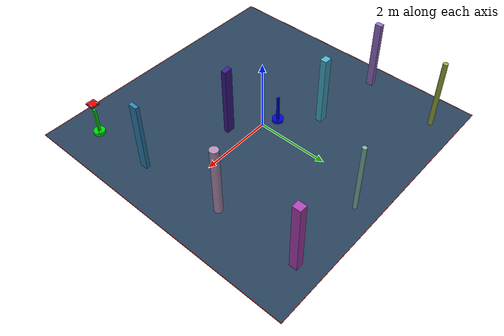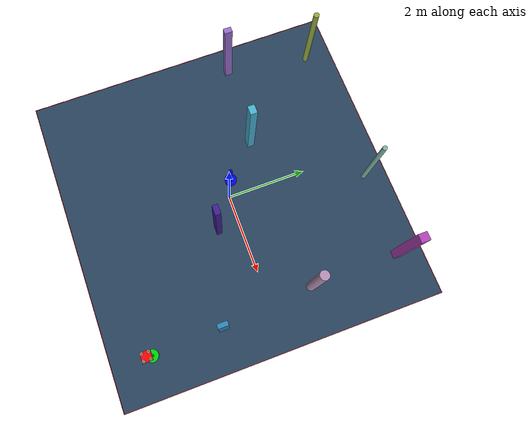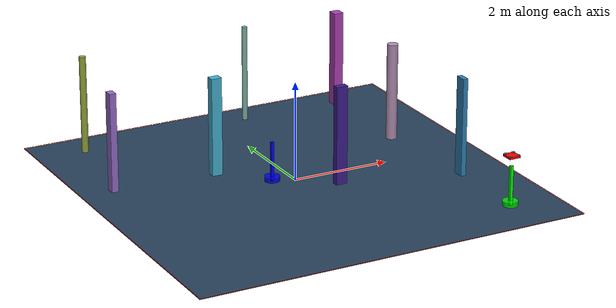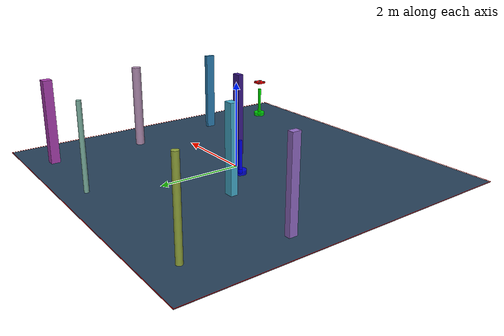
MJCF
<?xml version='1.0' encoding='utf-8'?>
<mujoco model="complex_uav_env">
  <compiler angle="degree" coordinate="local" inertiafromgeom="true" />
  <option integrator="RK4" timestep="0.01" />

  <visual>
    <headlight diffuse="0.6 0.6 0.6" ambient="0.3 0.3 0.3" />
    <rgba haze="0.15 0.25 0.35 1" />
    <global offwidth="2560" offheight="1440" />
  </visual>

  <asset>
    <texture type="skybox" builtin="gradient" rgb1="0.3 0.5 0.7" rgb2="0 0 0" width="512" height="3072" />
    <texture name="grid" type="2d" builtin="checker" rgb1="0.1 0.2 0.3" rgb2="0.2 0.3 0.4" width="512" height="512" />
    <material name="grid" texture="grid" texrepeat="1 1" />
  </asset>

  <worldbody>

    <geom name="ground" type="plane" size="4.0 4.0 0.1" material="grid" />
    <light name="light1" pos="0 0 4" dir="0 0 -1" diffuse="1 1 1" />

    <geom name="start_marker" type="cylinder" size="0.15 0.05" pos="3.0 -3.0 0.05" rgba="0 1 0 0.8" />
    <geom name="start_pole" type="box" size="0.03 0.03 0.4" pos="3.0 -3.0 0.4" rgba="0 1 0 1" />

    <geom name="goal_marker" type="cylinder" size="0.15 0.05" pos="-0.40393377485241455 0.18988515151932672 0.05" rgba="0 0 1 0.8" />
    <geom name="goal_pole" type="box" size="0.03 0.03 0.4" pos="-0.40393377485241455 0.18988515151932672 0.4" rgba="0 0 1 1" />

    <body name="chassis" pos="3.0 -3.0 1.0">
      <joint type="free" name="root" />
      <geom type="box" size="0.12 0.12 0.02" rgba="1.0 0.0 0.0 1.0" mass="0.8" />

      <geom type="box" size="0.08 0.01 0.005" pos="0 0 0.01" rgba="0.3 0.3 0.3 1" />
      <geom type="box" size="0.01 0.08 0.005" pos="0 0 0.01" rgba="0.3 0.3 0.3 1" />

      <geom type="cylinder" size="0.015 0.02" pos="0.08 0.08 0.015" rgba="0.2 0.2 0.2 1" />
      <geom type="cylinder" size="0.015 0.02" pos="-0.08 0.08 0.015" rgba="0.2 0.2 0.2 1" />
      <geom type="cylinder" size="0.015 0.02" pos="0.08 -0.08 0.015" rgba="0.2 0.2 0.2 1" />
      <geom type="cylinder" size="0.015 0.02" pos="-0.08 -0.08 0.015" rgba="0.2 0.2 0.2 1" />

      <geom type="cylinder" size="0.04 0.002" pos="0.08 0.08 0.035" rgba="0.7 0.7 0.7 0.8" />
      <geom type="cylinder" size="0.04 0.002" pos="-0.08 0.08 0.035" rgba="0.7 0.7 0.7 0.8" />
      <geom type="cylinder" size="0.04 0.002" pos="0.08 -0.08 0.035" rgba="0.7 0.7 0.7 0.8" />
      <geom type="cylinder" size="0.04 0.002" pos="-0.08 -0.08 0.035" rgba="0.7 0.7 0.7 0.8" />

      <site name="motor1" pos="0.08 0.08 0" size="0.01" />
      <site name="motor2" pos="-0.08 0.08 0" size="0.01" />
      <site name="motor3" pos="0.08 -0.08 0" size="0.01" />
      <site name="motor4" pos="-0.08 -0.08 0" size="0.01" />
    </body>
    <geom name="test_obs_0" type="box" size="0.05146255187990232 0.11677464683992089 1.0" pos="2.983828013611574 -1.2288475011863345 1.0" rgba="0.18091703932556824 0.5098252476744816 0.7151557434057131 1.0" />
    <geom name="test_obs_1" type="box" size="0.1160321020337364 0.0671410573391221 1.0" pos="0.6930636757392026 -0.5431877997751606 1.0" rgba="0.237172360439671 0.10867586581939924 0.5548386382525345 1.0" />
    <geom name="test_obs_2" type="box" size="0.10747967403015923 0.0838487729430159 1.0" pos="-1.2146947030393123 1.003051133424544 1.0" rgba="0.27608883140518314 0.6938923621886609 0.8168387831602699 1.0" />
    <geom name="test_obs_3" type="cylinder" size="0.11089071839348905 1.0" pos="2.7759049601511547 1.0849194651555156 1.0" rgba="0.692473782414632 0.5536302441456892 0.695582088503951 1.0" />
    <geom name="test_obs_4" type="cylinder" size="0.06817493509189315 1.0" pos="-2.979210506379506 3.2981855477879725 1.0" rgba="0.5697358370889026 0.6456243122787975 0.23303212664884418 1.0" />
    <geom name="test_obs_5" type="box" size="0.06693340730056999 0.09477397438212867 1.0" pos="-3.3161801675176665 1.175300586052621 1.0" rgba="0.5799623963262612 0.4233891404679636 0.778856867710814 1.0" />
    <geom name="test_obs_6" type="box" size="0.10088189791377522 0.10807863307219684 1.0" pos="2.756123722435696 3.3591862023744397 1.0" rgba="0.6825861022957408 0.2533027895004344 0.7017291241017998 1.0" />
    <geom name="test_obs_7" type="cylinder" size="0.05583057051353244 1.0" pos="0.6498424772448799 3.4182404593376883 1.0" rgba="0.4863818048795231 0.6965396726910799 0.6317486246246757 1.0" />
  <geom name="boundary_north" type="box" size="4.0 0.005 0.002" pos="0 4.0 0.002" rgba="1.0 0.0 0.0 1.0" /><geom name="boundary_south" type="box" size="4.0 0.005 0.002" pos="0 -4.0 0.002" rgba="1.0 0.0 0.0 1.0" /><geom name="boundary_east" type="box" size="0.005 4.0 0.002" pos="4.0 0 0.002" rgba="1.0 0.0 0.0 1.0" /><geom name="boundary_west" type="box" size="0.005 4.0 0.002" pos="-4.0 0 0.002" rgba="1.0 0.0 0.0 1.0" /></worldbody>

  <actuator>
    <motor name="m1" gear="0 0 1 0 0 0" site="motor1" />
    <motor name="m2" gear="0 0 1 0 0 0" site="motor2" />
    <motor name="m3" gear="0 0 1 0 0 0" site="motor3" />
    <motor name="m4" gear="0 0 1 0 0 0" site="motor4" />
  </actuator>
</mujoco>
